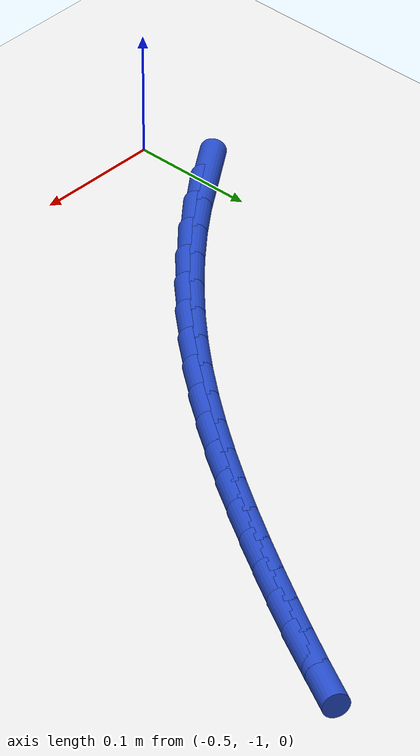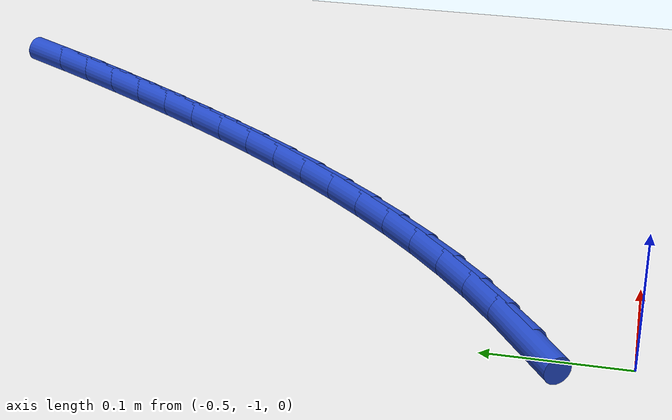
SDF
<sdf version="1.6">
 <world name="default">
  <model name="ground_plane">
   <static>1</static>
   <link name="link">
    <collision name="collision">
     <geometry><plane><normal>0 0 1</normal><size>100 100</size></plane></geometry>
     <surface><friction><ode><mu>100</mu><mu2>50</mu2></ode></friction></surface>
    </collision>
    <visual name="visual">
     <cast_shadows>0</cast_shadows>
     <geometry><plane><normal>0 0 1</normal><size>100 100</size></plane></geometry>
     <material>
      <script><uri>file://media/materials/scripts/gazebo.material</uri><name>Gazebo/WhiteGlow</name></script>
     </material>
    </visual>
   </link>
  </model>
  <model name="line">
   <link name="link_177">
    <pose>-0.4918716985125488 -0.9296349894293808 0.01 0 1.57 0.6036568591282426</pose>
    <collision name="collision">
     <geometry><cylinder><radius>0.01</radius><length>0.08</length></cylinder></geometry>
    </collision>
    <visual name="visual">
     <material>
      <script><name>Gazebo/Blue</name><uri>file://media/materials/scripts/gazebo.material</uri></script>
     </material>
     <geometry><cylinder><radius>0.01</radius><length>0.08</length></cylinder></geometry>
    </visual>
   </link>
   <link name="link_178">
    <pose>-0.46394028216043404 -0.9103757548712073 0.01 0 1.57 0.6513785204648845</pose>
    <collision name="collision">
     <geometry><cylinder><radius>0.01</radius><length>0.08</length></cylinder></geometry>
    </collision>
    <visual name="visual">
     <material>
      <script><name>Gazebo/Blue</name><uri>file://media/materials/scripts/gazebo.material</uri></script>
     </material>
     <geometry><cylinder><radius>0.01</radius><length>0.08</length></cylinder></geometry>
    </visual>
   </link>
   <link name="link_179">
    <pose>-0.4369550824597801 -0.8898027280058795 0.01 0 1.57 0.6962143321977509</pose>
    <collision name="collision">
     <geometry><cylinder><radius>0.01</radius><length>0.08</length></cylinder></geometry>
    </collision>
    <visual name="visual">
     <material>
      <script><name>Gazebo/Blue</name><uri>file://media/materials/scripts/gazebo.material</uri></script>
     </material>
     <geometry><cylinder><radius>0.01</radius><length>0.08</length></cylinder></geometry>
    </visual>
   </link>
   <link name="link_180">
    <pose>-0.4110034480111728 -0.868111378480213 0.01 0 1.57 0.7387126657564522</pose>
    <collision name="collision">
     <geometry><cylinder><radius>0.01</radius><length>0.08</length></cylinder></geometry>
    </collision>
    <visual name="visual">
     <material>
      <script><name>Gazebo/Blue</name><uri>file://media/materials/scripts/gazebo.material</uri></script>
     </material>
     <geometry><cylinder><radius>0.01</radius><length>0.08</length></cylinder></geometry>
    </visual>
   </link>
   <link name="link_181">
    <pose>-0.3861718339007886 -0.8454964409217728 0.01 0 1.57 0.7791895050582064</pose>
    <collision name="collision">
     <geometry><cylinder><radius>0.01</radius><length>0.08</length></cylinder></geometry>
    </collision>
    <visual name="visual">
     <material>
      <script><name>Gazebo/Blue</name><uri>file://media/materials/scripts/gazebo.material</uri></script>
     </material>
     <geometry><cylinder><radius>0.01</radius><length>0.08</length></cylinder></geometry>
    </visual>
   </link>
   <link name="link_182">
    <pose>-0.3624848526529432 -0.8221017772771555 0.01 0 1.57 0.8173757259509289</pose>
    <collision name="collision">
     <geometry><cylinder><radius>0.01</radius><length>0.08</length></cylinder></geometry>
    </collision>
    <visual name="visual">
     <material>
      <script><name>Gazebo/Blue</name><uri>file://media/materials/scripts/gazebo.material</uri></script>
     </material>
     <geometry><cylinder><radius>0.01</radius><length>0.08</length></cylinder></geometry>
    </visual>
   </link>
   <link name="link_183">
    <pose>-0.3398662017138487 -0.7979882351349064 0.01 0 1.57 0.8530163494728213</pose>
    <collision name="collision">
     <geometry><cylinder><radius>0.01</radius><length>0.08</length></cylinder></geometry>
    </collision>
    <visual name="visual">
     <material>
      <script><name>Gazebo/Blue</name><uri>file://media/materials/scripts/gazebo.material</uri></script>
     </material>
     <geometry><cylinder><radius>0.01</radius><length>0.08</length></cylinder></geometry>
    </visual>
   </link>
   <link name="link_184">
    <pose>-0.31823027820016886 -0.7732090114836633 0.01 0 1.57 0.8859222251231716</pose>
    <collision name="collision">
     <geometry><cylinder><radius>0.01</radius><length>0.08</length></cylinder></geometry>
    </collision>
    <visual name="visual">
     <material>
      <script><name>Gazebo/Blue</name><uri>file://media/materials/scripts/gazebo.material</uri></script>
     </material>
     <geometry><cylinder><radius>0.01</radius><length>0.08</length></cylinder></geometry>
    </visual>
   </link>
   <link name="link_185">
    <pose>-0.297491479228566 -0.7478173033120633 0.01 0 1.57 0.9159492312083968</pose>
    <collision name="collision">
     <geometry><cylinder><radius>0.01</radius><length>0.08</length></cylinder></geometry>
    </collision>
    <visual name="visual">
     <material>
      <script><name>Gazebo/Blue</name><uri>file://media/materials/scripts/gazebo.material</uri></script>
     </material>
     <geometry><cylinder><radius>0.01</radius><length>0.08</length></cylinder></geometry>
    </visual>
   </link>
   <link name="link_186">
    <pose>-0.27756420191570297 -0.7218663076087436 0.01 0 1.57 0.9429935341926807</pose>
    <collision name="collision">
     <geometry><cylinder><radius>0.01</radius><length>0.08</length></cylinder></geometry>
    </collision>
    <visual name="visual">
     <material>
      <script><name>Gazebo/Blue</name><uri>file://media/materials/scripts/gazebo.material</uri></script>
     </material>
     <geometry><cylinder><radius>0.01</radius><length>0.08</length></cylinder></geometry>
    </visual>
   </link>
   <link name="link_187">
    <pose>-0.2583628433782426 -0.6954092213623413 0.01 0 1.57 0.9669856525936916</pose>
    <collision name="collision">
     <geometry><cylinder><radius>0.01</radius><length>0.08</length></cylinder></geometry>
    </collision>
    <visual name="visual">
     <material>
      <script><name>Gazebo/Blue</name><uri>file://media/materials/scripts/gazebo.material</uri></script>
     </material>
     <geometry><cylinder><radius>0.01</radius><length>0.08</length></cylinder></geometry>
    </visual>
   </link>
   <link name="link_188">
    <pose>-0.2398018007328479 -0.6684992415614941 0.01 0 1.57 0.9878840237696307</pose>
    <collision name="collision">
     <geometry><cylinder><radius>0.01</radius><length>0.08</length></cylinder></geometry>
    </collision>
    <visual name="visual">
     <material>
      <script><name>Gazebo/Blue</name><uri>file://media/materials/scripts/gazebo.material</uri></script>
     </material>
     <geometry><cylinder><radius>0.01</radius><length>0.08</length></cylinder></geometry>
    </visual>
   </link>
   <link name="link_189">
    <pose>-0.22179547109618122 -0.6411895651948386 0.01 0 1.57 1.005668633570676</pose>
    <collision name="collision">
     <geometry><cylinder><radius>0.01</radius><length>0.08</length></cylinder></geometry>
    </collision>
    <visual name="visual">
     <material>
      <script><name>Gazebo/Blue</name><uri>file://media/materials/scripts/gazebo.material</uri></script>
     </material>
     <geometry><cylinder><radius>0.01</radius><length>0.08</length></cylinder></geometry>
    </visual>
   </link>
   <link name="link_190">
    <pose>-0.20425825158490615 -0.613533389251013 0.01 0 1.57 1.0203351133504621</pose>
    <collision name="collision">
     <geometry><cylinder><radius>0.01</radius><length>0.08</length></cylinder></geometry>
    </collision>
    <visual name="visual">
     <material>
      <script><name>Gazebo/Blue</name><uri>file://media/materials/scripts/gazebo.material</uri></script>
     </material>
     <geometry><cylinder><radius>0.01</radius><length>0.08</length></cylinder></geometry>
    </visual>
   </link>
   <link name="link_191">
    <pose>-0.1871045393156853 -0.5855839107186545 0.01 0 1.57 1.031899306975287</pose>
    <collision name="collision">
     <geometry><cylinder><radius>0.01</radius><length>0.08</length></cylinder></geometry>
    </collision>
    <visual name="visual">
     <material>
      <script><name>Gazebo/Blue</name><uri>file://media/materials/scripts/gazebo.material</uri></script>
     </material>
     <geometry><cylinder><radius>0.01</radius><length>0.08</length></cylinder></geometry>
    </visual>
   </link>
   <link name="link_192">
    <pose>-0.1702490325619981 -0.5573942067525443 0.01 0 1.57 1.0422069917508088</pose>
    <collision name="collision">
     <geometry><cylinder><radius>0.01</radius><length>0.08</length></cylinder></geometry>
    </collision>
    <visual name="visual">
     <material>
      <script><name>Gazebo/Blue</name><uri>file://media/materials/scripts/gazebo.material</uri></script>
     </material>
     <geometry><cylinder><radius>0.01</radius><length>0.08</length></cylinder></geometry>
    </visual>
   </link>
   <link name="link_193">
    <pose>-0.15366310862134597 -0.5289948012541202 0.01 0 1.57 1.055258784647385</pose>
    <collision name="collision">
     <geometry><cylinder><radius>0.01</radius><length>0.08</length></cylinder></geometry>
    </collision>
    <visual name="visual">
     <material>
      <script><name>Gazebo/Blue</name><uri>file://media/materials/scripts/gazebo.material</uri></script>
     </material>
     <geometry><cylinder><radius>0.01</radius><length>0.08</length></cylinder></geometry>
    </visual>
   </link>
   <link name="link_194">
    <pose>-0.1374412529560603 -0.5003672319314609 0.01 0 1.57 1.0716074565996943</pose>
    <collision name="collision">
     <geometry><cylinder><radius>0.01</radius><length>0.08</length></cylinder></geometry>
    </collision>
    <visual name="visual">
     <material>
      <script><name>Gazebo/Blue</name><uri>file://media/materials/scripts/gazebo.material</uri></script>
     </material>
     <geometry><cylinder><radius>0.01</radius><length>0.08</length></cylinder></geometry>
    </visual>
   </link>
  </model>
 </world>
</sdf>
